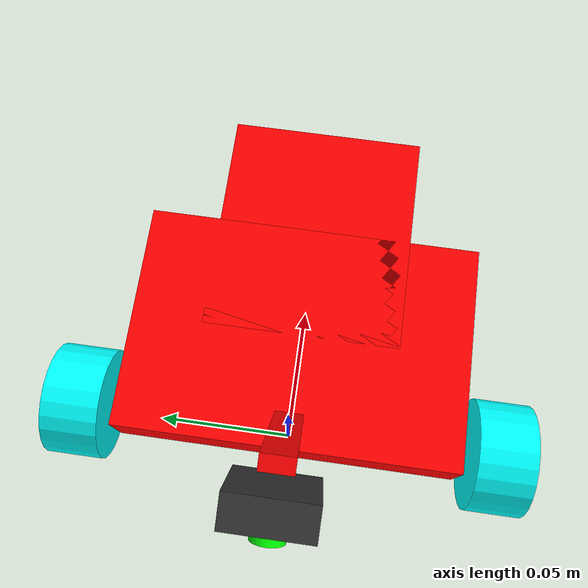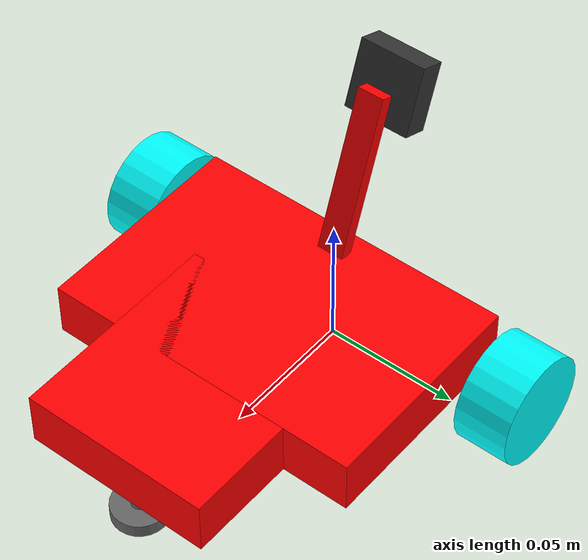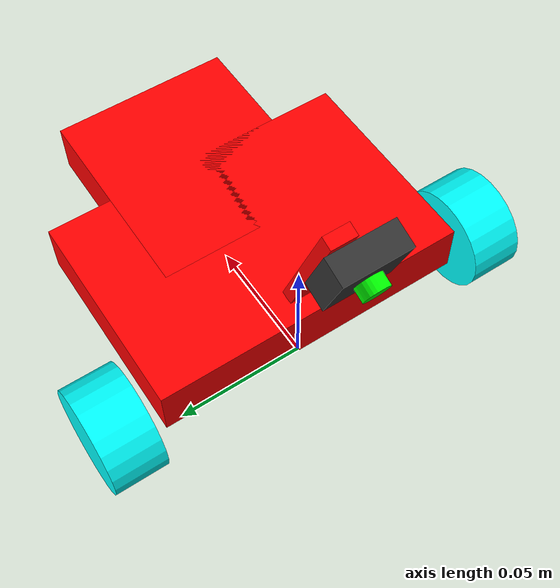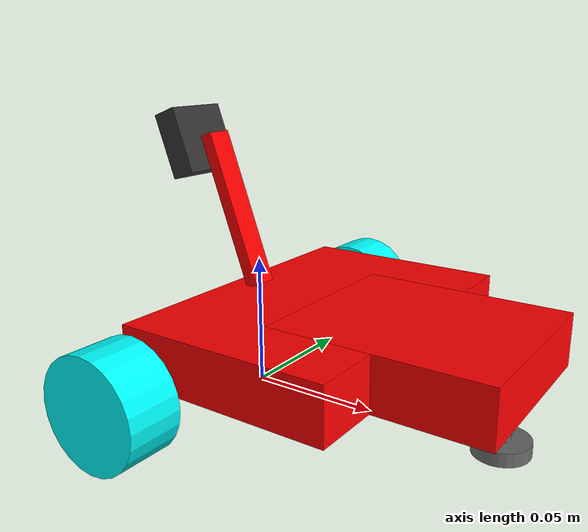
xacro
<?xml version="1.0"?>
<robot
    xmlns:xacro="http://ros.org/wiki/xacro" name="robot">
    <xacro:property name="wheel_base" value="0.15" />
    <xacro:property name="wheel_radius" value="0.02" />
    <xacro:property name="wheel_thickness" value="0.02" />
    <xacro:property name="camera_angle" value="${-20.0*pi/180.0}" />
    <xacro:property name="camera_extrinsic" value="0.02" />
    <link name="world"></link>
    <joint name="world_link" type="floating">
        <parent link="world"/>
        <child link="base_link"/>
        <origin xyz="0 0 0" rpy="0 0 0"/>
    </joint>
    <!-- Root Link of Robot -->
    <link name="base_link">
        <visual>
            <origin xyz="0.03 0 0.03" rpy="0 0 0" />
            <geometry>
                <box size="0.08 ${wheel_base-wheel_thickness-0.01} 0.02" />
            </geometry>
            <material name="Red">
                <color rgba="1.0 0 0 1.0"/>
            </material>
        </visual>
        <visual>
            <origin xyz="0.07 0 0.03" rpy="0 0 0" />
            <geometry>
                <box size="0.08 0.07 0.02" />
            </geometry>
            <material name="Red">
                <color rgba="1.0 0 0 1.0"/>
            </material>
        </visual>
        <visual>
            <origin xyz="0.10 0 0.0025" rpy="0 0 0" />
            <geometry>
                <cylinder radius="0.01" length="0.005" />
            </geometry>
            <material name="Grey">
                <color rgba="0.4 0.4 0.4 1.0"/>
            </material>
        </visual>
        <visual>
            <origin xyz="0.10 0 0.015" rpy="0 0 0" />
            <geometry>
                <cylinder radius="0.003" length="0.03" />
            </geometry>
            <material name="Grey">
                <color rgba="0.4 0.4 0.4 1.0"/>
            </material>
        </visual>
    </link>
    <link name="left_wheel">
        <visual>
            <origin rpy="${pi/2.0} 0 0" />
            <geometry>
                <cylinder radius="${wheel_radius}" length="${wheel_thickness}" />
            </geometry>
            <material name="Cyan">
                <color rgba="0 1.0 1.0 1.0"/>
            </material>
        </visual>
    </link>
    <link name="right_wheel">
        <visual>
            <origin rpy="${pi/2.0} 0 0" />
            <geometry>
                <cylinder radius="${wheel_radius}" length="${wheel_thickness}" />
            </geometry>
            <material name="Cyan">
                <color rgba="0 1.0 1.0 1.0"/>
            </material>
        </visual>
    </link>
    <link name="camera_mount_base">
        <visual>
            <origin xyz="0.00 0 0.03" rpy="0 0 0" />
            <geometry>
                <box size="0.005 0.01 0.06" />
            </geometry>
            <material name="Red">
                <color rgba="1.0 0 0 1.0"/>
            </material>
        </visual>
    </link>
    <link name="camera_base"></link>
    <link name="camera">
        <visual>
            <origin xyz="0.00 0 -${camera_extrinsic/2.0}" rpy="0 0 0" />
            <geometry>
                <box size="0.025 0.025 0.01" />
            </geometry>
            <material name="Black">
                <color rgba="0.2 0.2 0.2 1.0"/>
            </material>
        </visual>
        <visual>
            <origin xyz="0 0 -0.0025" rpy="0 0 0" />
            <geometry>
                <cylinder radius="0.005" length="0.005" />
            </geometry>
            <material name="Green">
                <color rgba="0 1 0 1.0"/>
            </material>
        </visual>
    </link>
    <!--joints -->
    <joint name="left_wheel_joint" type="fixed">
        <parent link="base_link"/>
        <child link="left_wheel"/>
        <origin xyz="0.0 ${wheel_base/2.0} ${wheel_radius}" rpy="0 0 0"/>
    </joint>
    <joint name="right_wheel_joint" type="fixed">
        <parent link="base_link"/>
        <child link="right_wheel"/>
        <origin xyz="0.0 -${wheel_base/2.0} ${wheel_radius}" rpy="0 0 0"/>
    </joint>
    <joint name="camera_mount_base_joint" type="fixed">
        <parent link="base_link"/>
        <child link="camera_mount_base"/>
        <origin xyz="0.0 0.0 0.04" rpy="0 ${camera_angle} 0" />
    </joint>
    <joint name="camera_base_joint" type="fixed">
        <parent link="camera_mount_base"/>
        <child link="camera_base"/>
        <origin xyz="0.0 0.0 0.06" rpy="0 -${pi/2.0} 0" />
    </joint>
    <joint name="camera_link" type="fixed">
        <parent link="camera_base"/>
        <child link="camera"/>
        <origin xyz="0 0 ${camera_extrinsic}" rpy="0 0 ${pi/2.0}"/>
    </joint>
</robot>
